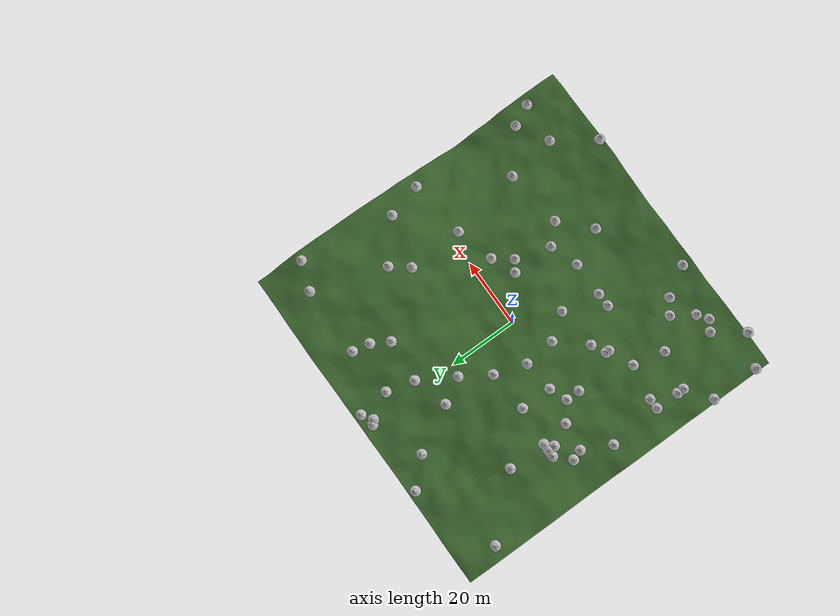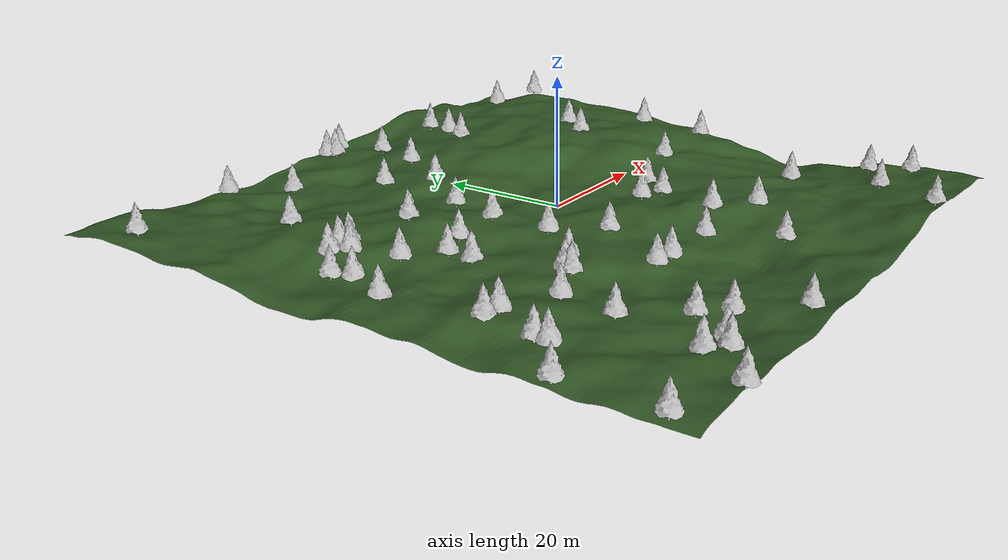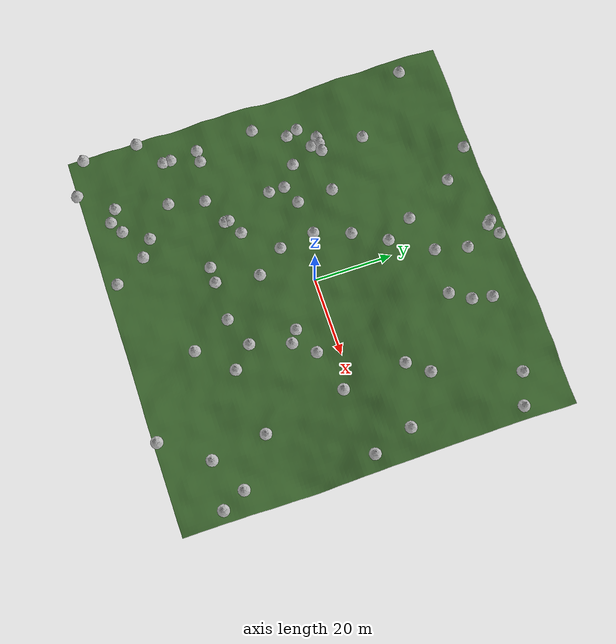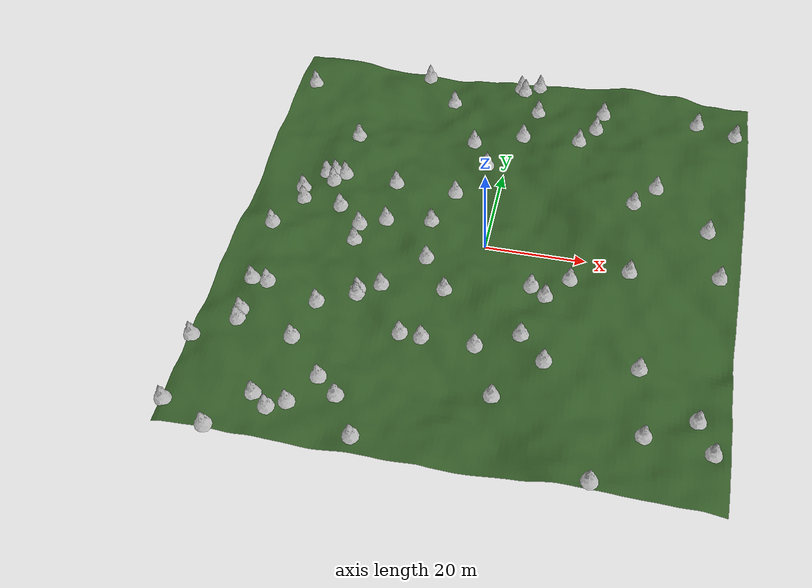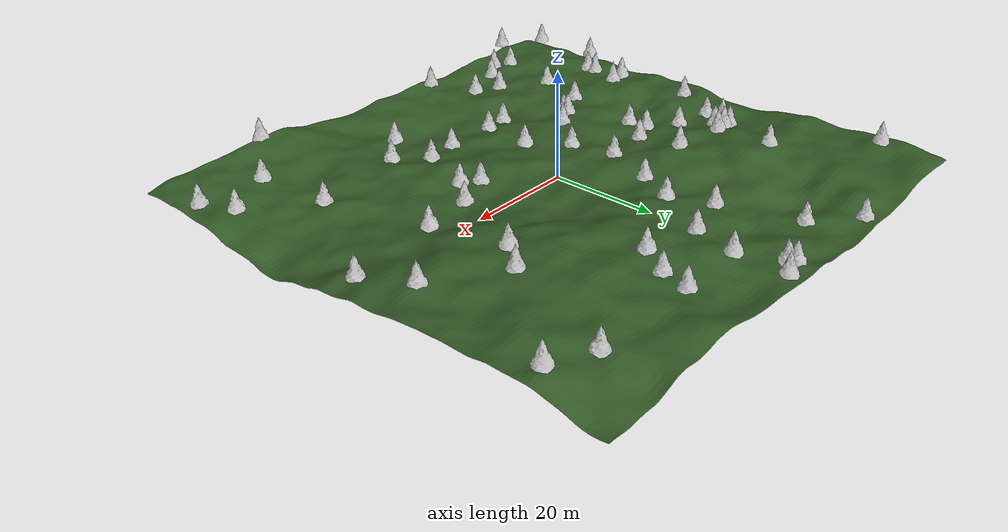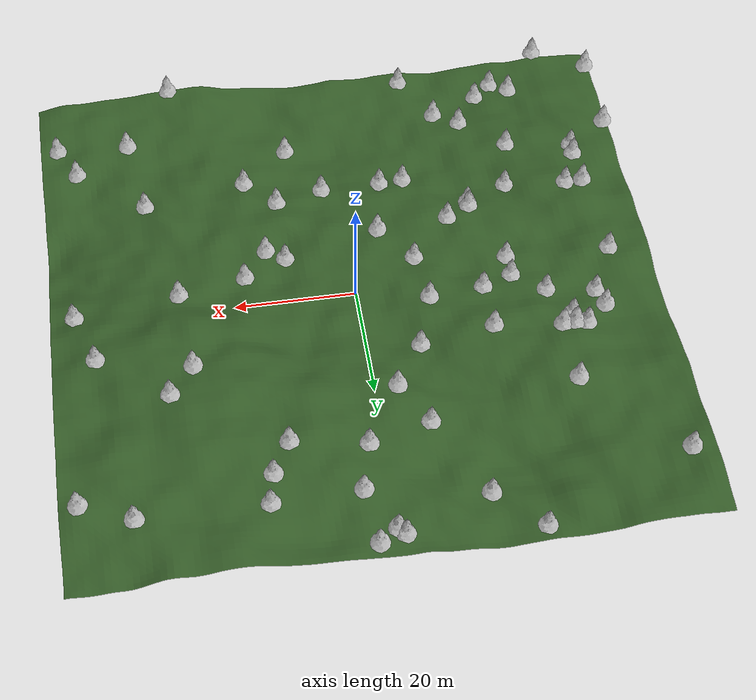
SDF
<sdf version="1.8">
 <world name="forest_world">
  <physics name="default_physics" type="ode">
   <max_step_size>0.001</max_step_size>
   <real_time_factor>1.0</real_time_factor>
   <real_time_update_rate>1000</real_time_update_rate>
  </physics>
  <gravity>0 0 -9.81</gravity>
  <plugin filename="ignition-gazebo-physics-system" name="ignition::gazebo::systems::Physics"/>
  <plugin filename="ignition-gazebo-user-commands-system" name="ignition::gazebo::systems::UserCommands"/>
  <plugin filename="ignition-gazebo-scene-broadcaster-system" name="ignition::gazebo::systems::SceneBroadcaster"/>
  <plugin filename="ignition-gazebo-sensors-system" name="ignition::gazebo::systems::Sensors">
   <render_engine>ogre2</render_engine>
  </plugin>
  <plugin filename="ignition-gazebo-contact-system" name="ignition::gazebo::systems::Contact"/>
  <scene>
   <ambient>0.5 0.6 0.7 1.0</ambient>
   <background>0.6 0.8 0.9 1.0</background>
   <shadows>true</shadows>
   <fog>
    <type>linear</type>
    <color>0.6 0.8 0.9 1.0</color>
    <density>0.02</density>
    <start>15.0</start>
    <end>80.0</end>
   </fog>
  </scene>
  <light type="directional" name="sun">
   <pose>0 0 20 0 0 0</pose>
   <diffuse>0.95 0.9 0.8 1</diffuse>
   <specular>0.2 0.2 0.2 1</specular>
   <attenuation>
    <range>1000</range>
    <constant>0.9</constant>
    <linear>0.01</linear>
    <quadratic>0.001</quadratic>
   </attenuation>
   <direction>-0.7 0.3 -0.5</direction>
  </light>
  <include><uri>model://terrain</uri><name>procedural_terrain</name></include>
  <include>
   <uri>model://pine_tree</uri>
   <name>pine_tree_1</name>
   <pose>-10.61 -5.56 -0.01 0 0 2.79</pose>
  </include>
  <include><uri>model://pine_tree</uri><name>pine_tree_3</name><pose>15.66 -25.76 0.45 0 0 2.72</pose></include>
  <include>
   <uri>model://pine_tree</uri>
   <name>pine_tree_11</name>
   <pose>-38.89 5.56 -0.18 0 0 2.08</pose>
  </include>
  <include>
   <uri>model://pine_tree</uri>
   <name>pine_tree_14</name>
   <pose>10.61 -20.71 0.39 0 0 2.22</pose>
  </include>
  <include>
   <uri>model://pine_tree</uri>
   <name>pine_tree_15</name>
   <pose>-48.99 -45.96 0.39 0 0 5.61</pose>
  </include>
  <include>
   <uri>model://pine_tree</uri>
   <name>pine_tree_16</name>
   <pose>-33.84 12.63 1.25 0 0 4.79</pose>
  </include>
  <include><uri>model://pine_tree</uri><name>pine_tree_18</name><pose>-7.58 27.78 0.19 0 0 3.57</pose></include>
  <include>
   <uri>model://pine_tree</uri>
   <name>pine_tree_20</name>
   <pose>-23.74 -35.86 -0.59 0 0 4.15</pose>
  </include>
  <include>
   <uri>model://pine_tree</uri>
   <name>pine_tree_22</name>
   <pose>-0.51 46.97 -0.03 0 0 3.16</pose>
  </include>
  <include>
   <uri>model://pine_tree</uri>
   <name>pine_tree_23</name>
   <pose>-42.93 -2.53 0.57 0 0 3.47</pose>
  </include>
  <include><uri>model://pine_tree</uri><name>pine_tree_24</name><pose>-25.76 0.51 0.09 0 0 3.78</pose></include>
  <include>
   <uri>model://pine_tree</uri>
   <name>pine_tree_28</name>
   <pose>-11.62 -23.74 -0.63 0 0 2.96</pose>
  </include>
  <include>
   <uri>model://pine_tree</uri>
   <name>pine_tree_30</name>
   <pose>-14.65 -46.97 -0.07 0 0 3.43</pose>
  </include>
  <include>
   <uri>model://pine_tree</uri>
   <name>pine_tree_31</name>
   <pose>-39.90 -50.00 1.03 0 0 3.97</pose>
  </include>
  <include><uri>model://pine_tree</uri><name>pine_tree_32</name><pose>4.55 38.89 0.80 0 0 5.81</pose></include>
  <include>
   <uri>model://pine_tree</uri>
   <name>pine_tree_33</name>
   <pose>-38.89 -17.68 1.06 0 0 3.22</pose>
  </include>
  <include><uri>model://pine_tree</uri><name>pine_tree_39</name><pose>38.89 39.90 1.99 0 0 2.11</pose></include>
  <include>
   <uri>model://pine_tree</uri>
   <name>pine_tree_40</name>
   <pose>-21.72 -15.66 0.04 0 0 4.06</pose>
  </include>
  <include>
   <uri>model://pine_tree</uri>
   <name>pine_tree_41</name>
   <pose>13.64 -10.61 -0.11 0 0 5.63</pose>
  </include>
  <include>
   <uri>model://pine_tree</uri>
   <name>pine_tree_42</name>
   <pose>-14.65 40.91 -1.38 0 0 1.43</pose>
  </include>
  <include><uri>model://pine_tree</uri><name>pine_tree_43</name><pose>0.51 45.96 0.08 0 0 1.43</pose></include>
  <include><uri>model://pine_tree</uri><name>pine_tree_45</name><pose>-30.81 4.55 0.21 0 0 3.02</pose></include>
  <include>
   <uri>model://pine_tree</uri>
   <name>pine_tree_50</name>
   <pose>2.53 -23.74 -0.99 0 0 3.34</pose>
  </include>
  <include><uri>model://pine_tree</uri><name>pine_tree_53</name><pose>45.96 -0.51 0.32 0 0 3.93</pose></include>
  <include>
   <uri>model://pine_tree</uri>
   <name>pine_tree_54</name>
   <pose>-20.71 11.62 1.53 0 0 4.85</pose>
  </include>
  <include>
   <uri>model://pine_tree</uri>
   <name>pine_tree_55</name>
   <pose>-41.92 -26.77 0.35 0 0 2.82</pose>
  </include>
  <include><uri>model://pine_tree</uri><name>pine_tree_58</name><pose>28.79 -2.53 0.78 0 0 5.36</pose></include>
  <include><uri>model://pine_tree</uri><name>pine_tree_61</name><pose>17.68 34.85 1.84 0 0 3.34</pose></include>
  <include>
   <uri>model://pine_tree</uri>
   <name>pine_tree_64</name>
   <pose>26.77 -48.99 1.80 0 0 4.64</pose>
  </include>
  <include><uri>model://pine_tree</uri><name>pine_tree_67</name><pose>14.65 29.80 2.49 0 0 5.09</pose></include>
  <include><uri>model://pine_tree</uri><name>pine_tree_69</name><pose>18.69 39.90 1.66 0 0 4.03</pose></include>
  <include><uri>model://pine_tree</uri><name>pine_tree_70</name><pose>3.54 47.98 0.04 0 0 6.21</pose></include>
  <include>
   <uri>model://pine_tree</uri>
   <name>pine_tree_71</name>
   <pose>-25.76 -3.54 -0.08 0 0 1.13</pose>
  </include>
  <include>
   <uri>model://pine_tree</uri>
   <name>pine_tree_73</name>
   <pose>-27.78 -41.92 -0.75 0 0 4.35</pose>
  </include>
  <include>
   <uri>model://pine_tree</uri>
   <name>pine_tree_74</name>
   <pose>-7.58 -23.74 -0.91 0 0 2.57</pose>
  </include>
  <include>
   <uri>model://pine_tree</uri>
   <name>pine_tree_75</name>
   <pose>-8.59 12.63 -0.05 0 0 4.11</pose>
  </include>
  <include>
   <uri>model://pine_tree</uri>
   <name>pine_tree_77</name>
   <pose>-5.56 -12.63 -0.04 0 0 5.87</pose>
  </include>
  <include>
   <uri>model://pine_tree</uri>
   <name>pine_tree_82</name>
   <pose>7.58 -33.84 -1.07 0 0 5.50</pose>
  </include>
  <include>
   <uri>model://pine_tree</uri>
   <name>pine_tree_84</name>
   <pose>-19.70 -38.89 -1.01 0 0 5.25</pose>
  </include>
  <include><uri>model://pine_tree</uri><name>pine_tree_86</name><pose>42.93 9.60 1.89 0 0 3.36</pose></include>
  <include>
   <uri>model://pine_tree</uri>
   <name>pine_tree_87</name>
   <pose>10.61 -8.59 -0.28 0 0 2.98</pose>
  </include>
  <include>
   <uri>model://pine_tree</uri>
   <name>pine_tree_88</name>
   <pose>-41.92 -24.75 0.41 0 0 3.79</pose>
  </include>
  <include>
   <uri>model://pine_tree</uri>
   <name>pine_tree_89</name>
   <pose>-30.81 -43.94 -0.08 0 0 3.57</pose>
  </include>
  <include><uri>model://pine_tree</uri><name>pine_tree_92</name><pose>-11.62 3.54 0.54 0 0 1.46</pose></include>
  <include>
   <uri>model://pine_tree</uri>
   <name>pine_tree_93</name>
   <pose>46.97 -38.89 -0.32 0 0 4.99</pose>
  </include>
  <include>
   <uri>model://pine_tree</uri>
   <name>pine_tree_94</name>
   <pose>-17.68 -13.64 -0.10 0 0 1.88</pose>
  </include>
  <include><uri>model://pine_tree</uri><name>pine_tree_95</name><pose>-20.71 2.53 0.32 0 0 3.87</pose></include>
  <include>
   <uri>model://pine_tree</uri>
   <name>pine_tree_96</name>
   <pose>-45.96 38.89 1.36 0 0 5.64</pose>
  </include>
  <include>
   <uri>model://pine_tree</uri>
   <name>pine_tree_99</name>
   <pose>-35.86 12.63 0.78 0 0 1.97</pose>
  </include>
  <include>
   <uri>model://pine_tree</uri>
   <name>pine_tree_101</name>
   <pose>-21.72 47.98 -1.04 0 0 3.25</pose>
  </include>
  <include>
   <uri>model://pine_tree</uri>
   <name>pine_tree_105</name>
   <pose>27.78 13.64 2.87 0 0 6.12</pose>
  </include>
  <include>
   <uri>model://pine_tree</uri>
   <name>pine_tree_107</name>
   <pose>17.68 -5.56 -0.40 0 0 4.72</pose>
  </include>
  <include>
   <uri>model://pine_tree</uri>
   <name>pine_tree_114</name>
   <pose>-28.79 -19.70 -0.29 0 0 3.06</pose>
  </include>
  <include>
   <uri>model://pine_tree</uri>
   <name>pine_tree_116</name>
   <pose>-39.90 8.59 -0.31 0 0 5.79</pose>
  </include>
  <include>
   <uri>model://pine_tree</uri>
   <name>pine_tree_118</name>
   <pose>-31.82 23.74 1.56 0 0 0.29</pose>
  </include>
  <include>
   <uri>model://pine_tree</uri>
   <name>pine_tree_119</name>
   <pose>-41.92 -17.68 1.23 0 0 5.26</pose>
  </include>
  <include>
   <uri>model://pine_tree</uri>
   <name>pine_tree_121</name>
   <pose>-30.81 -28.79 0.15 0 0 3.60</pose>
  </include>
  <include><uri>model://pine_tree</uri><name>pine_tree_122</name><pose>2.53 30.81 0.84 0 0 3.71</pose></include>
  <include>
   <uri>model://pine_tree</uri>
   <name>pine_tree_123</name>
   <pose>43.94 -32.83 -0.41 0 0 5.42</pose>
  </include>
  <include>
   <uri>model://pine_tree</uri>
   <name>pine_tree_128</name>
   <pose>-33.84 10.61 0.88 0 0 3.18</pose>
  </include>
  <include>
   <uri>model://pine_tree</uri>
   <name>pine_tree_129</name>
   <pose>46.97 36.87 2.82 0 0 5.79</pose>
  </include>
  <include>
   <uri>model://pine_tree</uri>
   <name>pine_tree_133</name>
   <pose>-3.54 20.71 1.00 0 0 0.75</pose>
  </include>
  <include>
   <uri>model://pine_tree</uri>
   <name>pine_tree_135</name>
   <pose>34.85 -37.88 0.19 0 0 0.16</pose>
  </include>
  <include>
   <uri>model://pine_tree</uri>
   <name>pine_tree_138</name>
   <pose>31.82 18.69 2.82 0 0 3.89</pose>
  </include>
  <include>
   <uri>model://pine_tree</uri>
   <name>pine_tree_141</name>
   <pose>-33.84 -41.92 0.28 0 0 1.07</pose>
  </include>
  <include>
   <uri>model://pine_tree</uri>
   <name>pine_tree_145</name>
   <pose>-31.82 12.63 1.12 0 0 4.84</pose>
  </include>
  <include>
   <uri>model://pine_tree</uri>
   <name>pine_tree_147</name>
   <pose>32.83 -23.74 -0.41 0 0 2.21</pose>
  </include>
  <include>
   <uri>model://pine_tree</uri>
   <name>pine_tree_148</name>
   <pose>-48.99 -31.82 0.32 0 0 5.54</pose>
  </include>
  <include>
   <uri>model://pine_tree</uri>
   <name>pine_tree_149</name>
   <pose>-21.72 -16.67 -0.21 0 0 0.21</pose>
  </include>
 </world>
</sdf>

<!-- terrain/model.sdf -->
<sdf version="1.8">
  <model name="terrain">
    <static>true</static>
    <link name="link">
      <collision name="collision">
        <geometry>
          <mesh>
            <uri>model://terrain/terrain.obj</uri>
            <scale>1 1 1</scale>
          </mesh>
        </geometry>
        <surface>
          <friction>
            <ode>
              <mu>2.0</mu>
              <mu2>2.0</mu2>
            </ode>
          </friction>
        </surface>
      </collision>
      <visual name="visual">
        <geometry>
          <mesh>
            <uri>model://terrain/terrain.obj</uri>
            <scale>1 1 1</scale>
          </mesh>
        </geometry>
        <material>
          <ambient>0.2 0.35 0.15 1</ambient>
          <diffuse>0.2 0.35 0.15 1</diffuse>
          <specular>0.05 0.05 0.05 1</specular>
        </material>
      </visual>
    </link>
  </model>
</sdf>

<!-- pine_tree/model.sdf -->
<sdf version="1.6">
  <model name="pine_tree">
    <static>true</static>
    <link name="link">
      <collision name="collision">
        <geometry>
          <mesh>
            <uri>file://isr-testbed/pine_tree/meshes/pine_tree.dae</uri>
          </mesh>
        </geometry>
      </collision>
      <visual name="branch">
        <geometry>
          <mesh>
            <uri>file://isr-testbed/pine_tree/meshes/pine_tree.dae</uri>
            <submesh>
              <name>Branch</name>
            </submesh>
          </mesh>
        </geometry>
        <material>
          <script>
            <uri>file://isr-testbed/pine_tree/materials/scripts/</uri>
            <uri>file://isr-testbed/pine_tree/materials/textures/</uri>
            <name>PineTree/Branch</name>
          </script>
        </material>
      </visual>
      <visual name="bark">
        <geometry>
          <mesh>
            <uri>file://isr-testbed/pine_tree/meshes/pine_tree.dae</uri>
            <submesh>
              <name>Bark</name>
            </submesh>
          </mesh>
        </geometry>
        <material>
          <script>
            <uri>file://isr-testbed/pine_tree/materials/scripts/</uri>
            <uri>file://isr-testbed/pine_tree/materials/textures/</uri>
            <name>PineTree/Bark</name>
          </script>
        </material>
      </visual>
    </link>
  </model>
</sdf>
